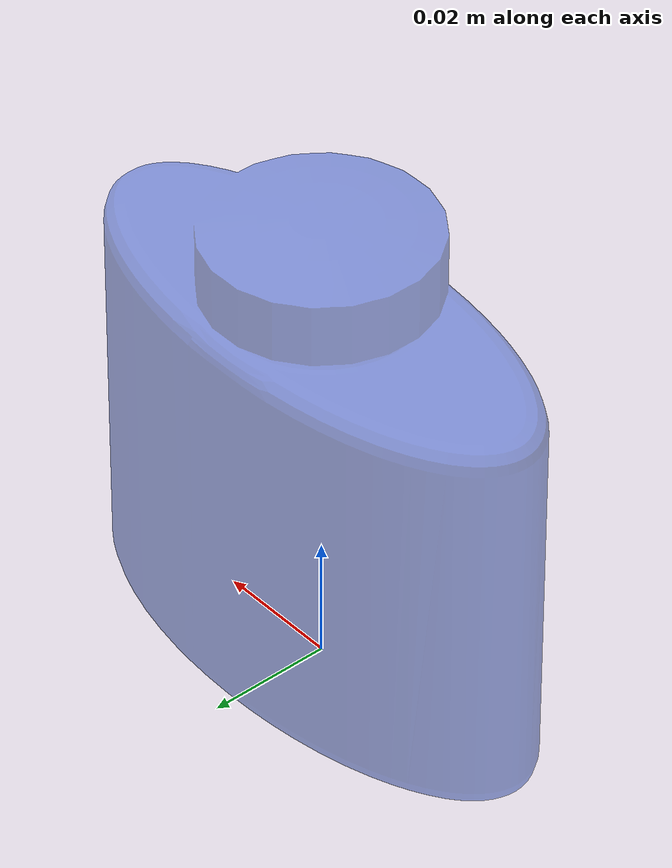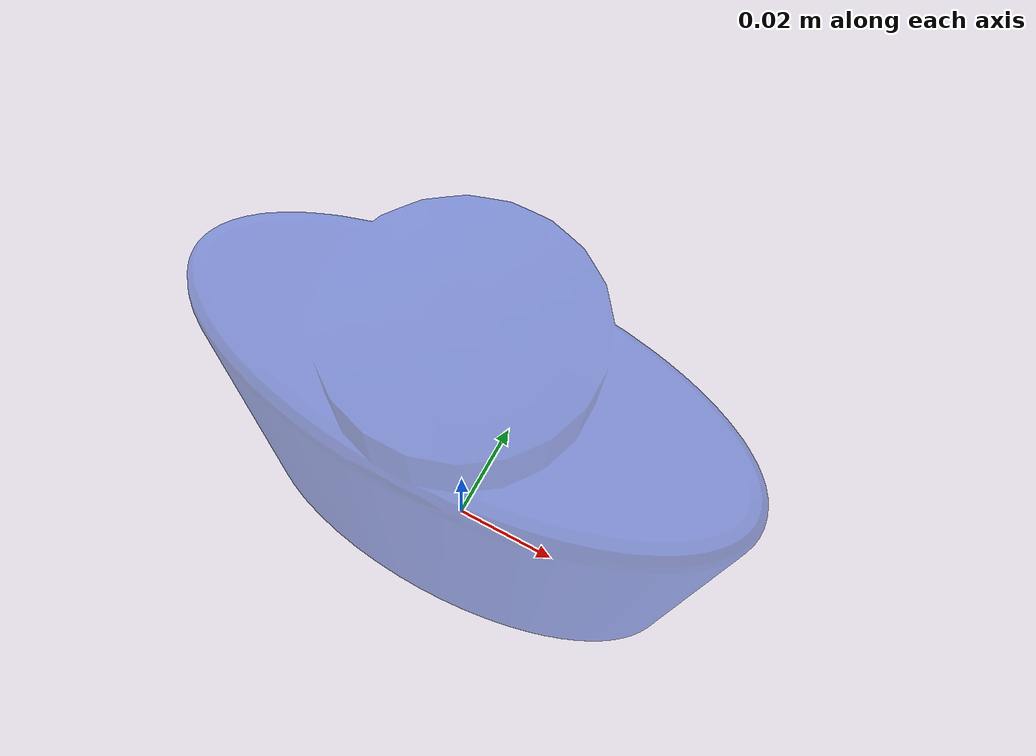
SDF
<?xml version="1.0" ?>
<sdf version='1.6'>
  <model name='ink'>
    <link name='ink'>
      <pose frame=''>0 0 0 0 -0 0</pose>
      <inertial>
        <pose frame=''>-6e-06 -1e-06 0.035989 0 -0 0</pose>
        <mass>0.42834</mass>
        <inertia>
          <ixx>0.00022681</ixx>
          <ixy>-1.9011e-08</ixy>
          <ixz>-2.1713e-08</ixz>
          <iyy>0.00037551</iyy>
          <iyz>2.3468e-09</iyz>
          <izz>0.00021887</izz>
        </inertia>
      </inertial>
      <collision name='ink'>
      	  <surface>
	    <friction>
	      <ode>
		<mu>0.5</mu>
		<mu2>0.5</mu2>
	      </ode>
	    </friction>
	    <contact>
	      <ode>
		<kp>1000000.0</kp>
		<kd>1.0</kd>
		<max_vel>1.0</max_vel>
		<min_depth>0.0025</min_depth>
	      </ode>
	    </contact>
	  </surface>
        <pose frame=''>0 0 0 1.5708 -0 0</pose>
        <geometry>
                   <box>
              <size>0.04 0.04 0.04</size>
            </box>
        </geometry>
      </collision>
              <velocity_decay>
            <linear>0.000000</linear>
            <angular>0.000000</angular>
        </velocity_decay>
        <self_collide>0</self_collide>
        <kinematic>0</kinematic>
        <gravity>1</gravity>
      <visual name='Iroshizuku Ink Bottle.SLDPRT_visual'>
            	<material>
          <script>
            <uri>file://media/materials/scripts/gazebo.material</uri>
            <name>Gazebo/BlueTransparent</name>
          </script>
        </material>
        <pose frame=''>0 0 0 1.5708 -0 0</pose>
        <geometry>
          <mesh>
            <scale>1 1 1</scale>
            <uri>model://InkBottle/meshes/Iroshizuku Ink Bottle.SLDPRT.STL</uri>
          </mesh>
        </geometry>
      </visual>
    </link>
  </model>
</sdf>
